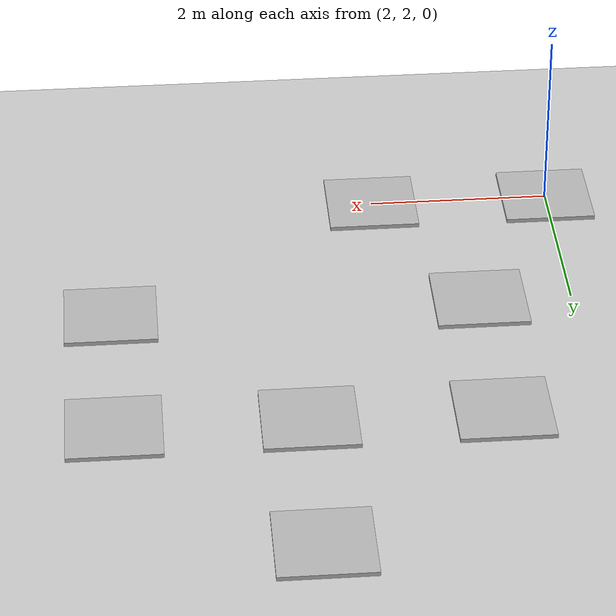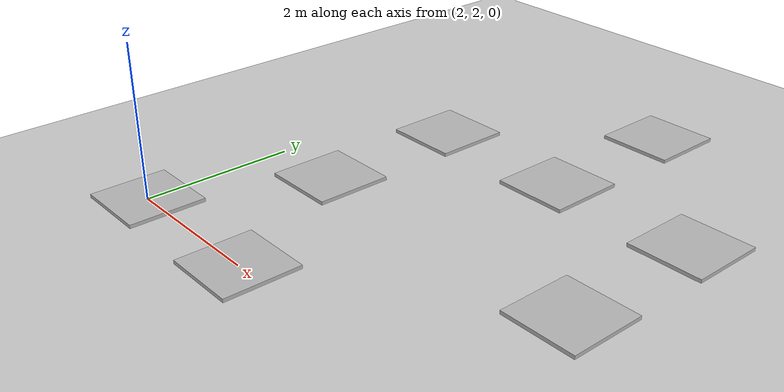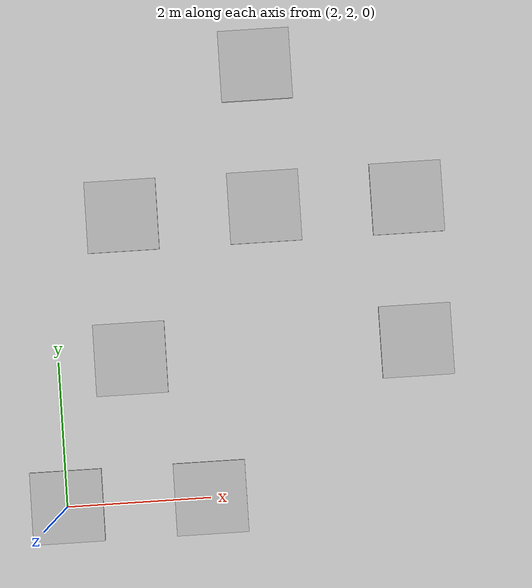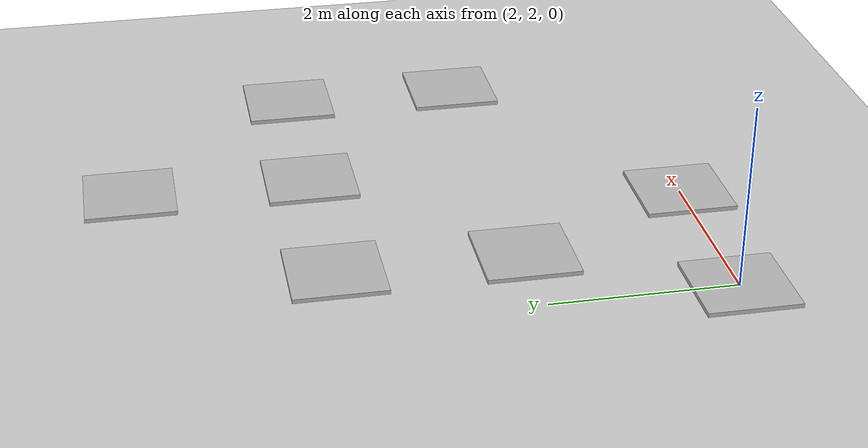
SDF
<?xml version="1.0" ?>
<sdf version="1.5">
  <world name="default">
    <!-- A global light source -->
    <include>
      <uri>model://sun</uri>
    </include>
    <!-- A ground plane -->
    <include>
      <uri>model://ground_plane</uri>
    </include>
    <!--include-->
    <!--/include-->

    <physics name='default_physics' default='0' type='ode'>
      <gravity>0 0 -9.8066</gravity>
      <ode>
        <solver>
          <type>quick</type>
          <iters>10</iters>
          <sor>1.3</sor>
          <use_dynamic_moi_rescaling>0</use_dynamic_moi_rescaling>
        </solver>
        <constraints>
          <cfm>0</cfm>
          <erp>0.2</erp>
          <contact_max_correcting_vel>100</contact_max_correcting_vel>
          <contact_surface_layer>0.001</contact_surface_layer>
        </constraints>
      </ode>
      <max_step_size>0.004</max_step_size>
      <real_time_factor>1</real_time_factor>
      <real_time_update_rate>250</real_time_update_rate>
      <magnetic_field>6.0e-6 2.3e-5 -4.2e-5</magnetic_field>
    </physics>

    <include>
      <uri>model://landing_station</uri>
      <pose>5 8 0 0 0 0</pose>
    </include>
    <include>
      <uri>model://landing_station</uri>
      <pose>3 6 0 0 0 0</pose>
    </include>
    <include>
      <uri>model://landing_station</uri>
      <pose>3 4 0 0 0 0</pose>
    </include>
    <include>
      <uri>model://landing_station</uri>
      <pose>2 2 0 0 0 0</pose>
    </include>
    <include>
      <uri>model://landing_station</uri>
      <pose>4 2 0 0 0 0</pose>
    </include>
    <include>
      <uri>model://landing_station</uri>
      <pose>5 6 0 0 0 0</pose>
    </include>
    <include>
      <uri>model://landing_station</uri>
      <pose>7 4 0 0 0 0</pose>
    </include>
    <include>
      <uri>model://landing_station</uri>
      <pose>7 6 0 0 0 0</pose>
    </include>

  </world>
</sdf>

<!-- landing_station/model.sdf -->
<sdf version="1.5">
    <model name="landing_station">
      <pose>0 0 0  0 0 0</pose>
      <static>true</static>
      <link name="body">
        <visual name="visual">
          <geometry>
            <mesh><uri>model://landing_station/meshes/marker.obj</uri></mesh>
          </geometry>
        </visual>
      </link>
    </model>
</sdf>
